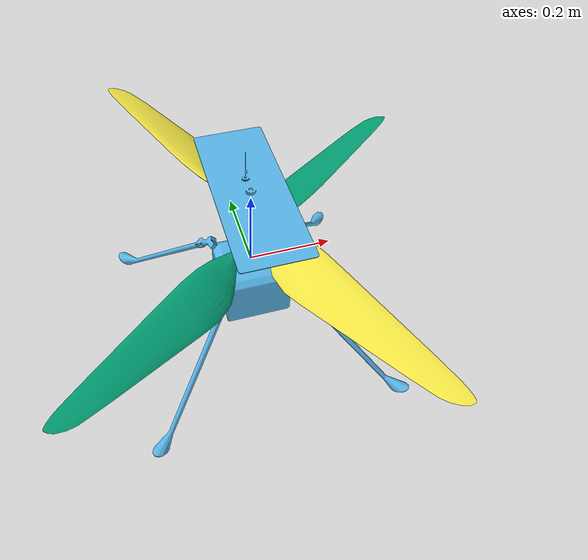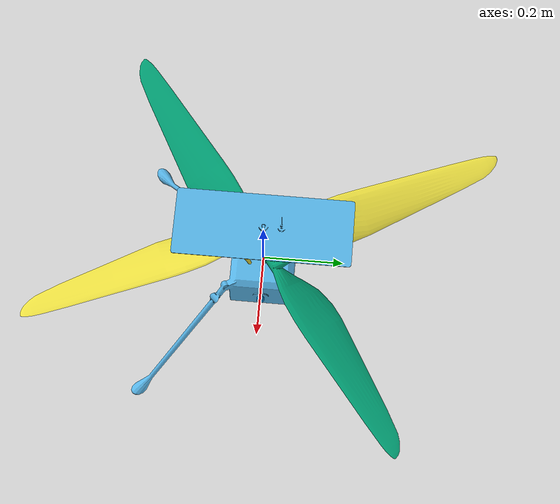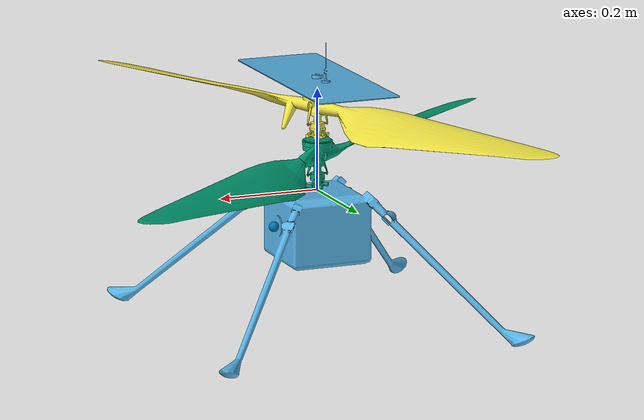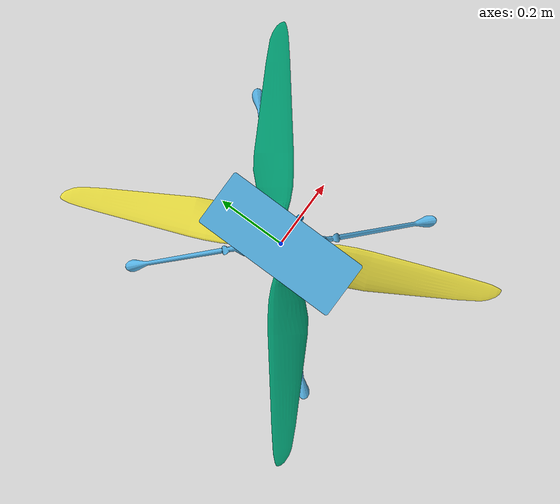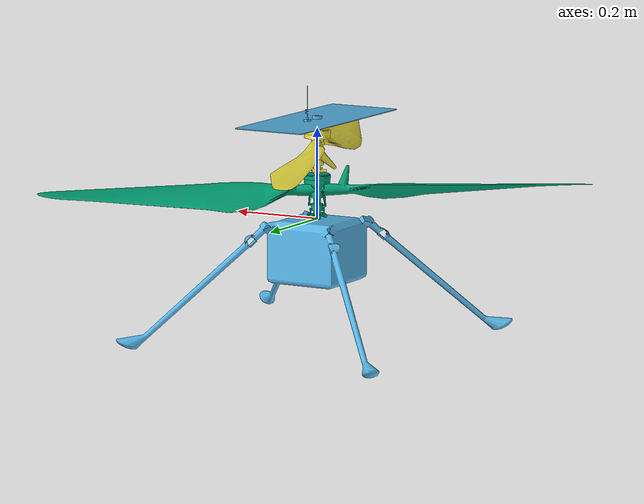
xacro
<?xml version='1.0'?>

<robot name="ingenuity" xmlns:xacro="http://www.ros.org/wiki/xacro">

    <!-- PROPERTIES -->

	<xacro:property name="M_PI" value="3.1415926535897931"/>

    <xacro:arg name="sensor_update_rate" default="25.0"/>
    <xacro:arg name="controller_update_rate" default="50.0"/>
    <xacro:property name="sensor_update_rate" value="$(arg sensor_update_rate)"/>
    <xacro:property name="controller_update_rate" value="$(arg controller_update_rate)"/>

    <!-- PLUGINS -->
    <gazebo>
        <plugin name="gazebo_ros_state" filename="libgazebo_ros_state.so">
            <pubInterval>0.025</pubInterval> <!-- But uses way more bandwidth due to TF! -->
            <linkName>link_base</linkName>
        </plugin>
    </gazebo>

	<!-- Cameras -->
	<gazebo reference="link_ingenuity_camera_front">
		<sensor type="camera" name="camera_front">
			<update_rate>${sensor_update_rate}</update_rate>
			<camera>
				<horizontal_fov>${90*M_PI/180.0}</horizontal_fov>
				<image>
					<format>R8G8B8</format>
					<width>640</width>
					<height>480</height>
				</image>
				<clip>
					<near>0.01</near>
					<far>100</far>
				</clip>
			</camera>

			<plugin name="camera_camera_controller" filename="libgazebo_ros_camera.so">
				<alwaysOn>true</alwaysOn>
				<updateRate>${sensor_update_rate}</updateRate>
				<cameraName>camera_front</cameraName>
				<imageTopicName>image_raw</imageTopicName>
				<cameraInfoTopicName>camera_info</cameraInfoTopicName>
				<frameName>link_ingenuity_camera_optical_front</frameName>
				<hackBaseline>0.07</hackBaseline>
				<distortionK1>0.0</distortionK1>
				<distortionK2>0.0</distortionK2>
				<distortionK3>0.0</distortionK3>
				<distortionT1>0.0</distortionT1>
				<distortionT2>0.0</distortionT2>
			</plugin>
		</sensor>
    </gazebo>

	<gazebo reference="link_ingenuity_camera_down">
		<sensor type="camera" name="camera_down">
			<update_rate>${sensor_update_rate}</update_rate>
			<camera>
				<horizontal_fov>${90 * M_PI/180.0}</horizontal_fov>
				<image>
					<format>R8G8B8</format>
					<width>640</width>
					<height>480</height>
				</image>
				<clip>
					<near>0.01</near>
					<far>100</far>
				</clip>
			</camera>

			<plugin name="camera_camera_controller" filename="libgazebo_ros_camera.so">
				<alwaysOn>true</alwaysOn>
				<updateRate>${sensor_update_rate}</updateRate>
				<cameraName>camera_down</cameraName>
				<imageTopicName>image_raw</imageTopicName>
				<cameraInfoTopicName>camera_info</cameraInfoTopicName>
				<frameName>link_ingenuity_camera_optical_down</frameName>
				<hackBaseline>0.07</hackBaseline>
				<distortionK1>0.0</distortionK1>
				<distortionK2>0.0</distortionK2>
				<distortionK3>0.0</distortionK3>
				<distortionT1>0.0</distortionT1>
				<distortionT2>0.0</distortionT2>
			</plugin>
		</sensor>
    </gazebo>

	<!-- Gazebo sensor plugins -->
	<gazebo>
		<plugin name="gazebo_ros_control" filename="libgazebo_ros_control.so">
		</plugin>

		<plugin name="quadrotor_imu_sim" filename="libhector_gazebo_ros_imu.so">
		    <alwaysOn>true</alwaysOn>
		    <updateRate>${sensor_update_rate}</updateRate>
		    <bodyName>ingenuity::link_base</bodyName>
		    <frameId>link_base</frameId>
		    <topicName>imu</topicName>
		    <gaussianNoise>0.05</gaussianNoise>
		    <accelDrift>0.001 0.001 0.001</accelDrift>
		</plugin>

		<plugin name="quadrotor_groundtruth_sim" filename="libgazebo_ros_p3d.so">
		    <!-- Takes a BODY NAME body::link and publishes an ODOM-Topic only, parent frame is world -->
		    <!-- COMBINE WITH static_transform_publisher AND ground_truth_to_tf IN THE GAZEBO_SPAWN.launch FILE-->
			<alwaysOn>true</alwaysOn>
			<updateRate>${sensor_update_rate}</updateRate>
			<bodyName>ingenuity::link_base</bodyName>
			<topicName>odom</topicName>
			<gaussianNoise>0.0</gaussianNoise>
			<frameName>world</frameName> <!-- REQUIRES world HERE! -->
		</plugin>
	</gazebo>

	<gazebo>
        <plugin name="quadrotor_simple_controller" filename="libhector_gazebo_quadrotor_simple_controller.so">
            <bodyName>ingenuity::link_base</bodyName>
            <odomTopic>odom</odomTopic>
            <imuTopic>imu</imuTopic>
            <cmdvelTopic>cmd_vel</cmdvelTopic>
            <landingtakeoffSpeed>0.125</landingtakeoffSpeed>
            <landingtakeoffHeight>0.5</landingtakeoffHeight>
            <maxForce>20.0</maxForce>

            <rollpitchProportionalGain>2.0</rollpitchProportionalGain>
            <rollpitchDifferentialGain>10.0</rollpitchDifferentialGain>
            <rollpitchIntegralGain>0.0</rollpitchIntegralGain>
            <yawProportionalGain>1.0</yawProportionalGain>
            <yawDifferentialGain>0.0</yawDifferentialGain>
            <yawIntegralGain>0.0</yawIntegralGain>
            <velocityXYProportionalGain>1.0</velocityXYProportionalGain>
            <velocityXYDifferentialGain>0.5</velocityXYDifferentialGain>
            <velocityXYIntegralGain>0.0</velocityXYIntegralGain>
            <velocityZProportionalGain>5.0</velocityZProportionalGain>
            <velocityZDifferentialGain>1.0</velocityZDifferentialGain>
            <velocityZIntegralGain>0.0</velocityZIntegralGain>

            <rollpitchLimit>1.0</rollpitchLimit>
            <yawLimit>3.1415</yawLimit>
            <velocityXYLimit>1.0</velocityXYLimit>
            <velocityZLimit>1.0</velocityZLimit>
        </plugin>
    </gazebo>

    <!-- LINKS -->

	<link name="link_base"></link>

	<link name="link_ingenuity_body">
        <inertial>
            <origin xyz="0.0 0.0 0.0" rpy="0.0 0.0 0.0"/>
            <mass value="1.7"/>
            <inertia ixx="0.044271" ixy="0" ixz="0" iyx="0.0" iyy="0.044271" iyz="0" izx="0.0" izy="0.0" izz="0.017708"/>
        </inertial>
        <collision name="link_ingenuity_body_collision">
            <origin xyz="0.0 0.0 0.0" rpy="0.0 0.0 0.0"/>
            <geometry>
                <box size="0.25 0.25 0.5"/>
            </geometry>
        </collision>
        <visual name="link_ingenuity_body_visual">
            <origin xyz="0.0 0.0 0.0" rpy="0.0 0.0 0.0"/>
            <geometry>
                <mesh filename="package://wai_ingenuity_gazebo/resources/link_ingenuity_body.dae"/>
            </geometry>
        </visual>
        <visual name="link_ingenuity_solar_panel_visual">
            <origin xyz="0.0 0.0 0.2" rpy="0.0 0.0 0.0"/>
            <geometry>
                <mesh filename="package://wai_ingenuity_gazebo/resources/link_ingenuity_solar_panel.dae"/>
            </geometry>
		</visual>
	</link>

	<link name="link_ingenuity_rotor_middle">
        <inertial>
            <origin xyz="0.0 0.0 0.0" rpy="0.0 0.0 0.0"/>
            <mass value="0.056" />
            <inertia ixx="0.020172" ixy="0.0" ixz="0.0" iyx="0.0" iyy="0.020172" iyz="0.0" izx="0.0" izy="0.0" izz="0.04032"/>
        </inertial>
        <visual name="link_ingenuity_rotor_middle_visual">
            <origin xyz="0.0 0.0 0.0" rpy="0.0 0.0 0.0"/>
            <geometry>
                <mesh filename="package://wai_ingenuity_gazebo/resources/link_ingenuity_rotor_middle.dae"/>
            </geometry>
        </visual>
	</link>

	<link name="link_ingenuity_rotor_top">
        <inertial>
            <origin xyz="0.0 0.0 0.0" rpy="0.0 0.0 0.0"/>
            <mass value="0.056" />
            <inertia ixx="0.020172" ixy="0.0" ixz="0.0" iyx="0.0" iyy="0.020172" iyz="0.0" izx="0.0" izy="0.0" izz="0.04032"/>
        </inertial>
		<visual name="link_ingenuity_rotor_top_visual">
		  <origin xyz="0.0 0.0 0.0" rpy="0.0 0.0 0.0"/>
		  <geometry>
			<mesh filename="package://wai_ingenuity_gazebo/resources/link_ingenuity_rotor_top.dae"/>
		  </geometry>
		</visual>
	</link>

	<link name="link_ingenuity_camera_front">
		<visual>
            <origin xyz="0.0 0.0 0.0" rpy="0.0 0.0 0.0"/>
            <geometry>
                <sphere radius="0.01"/>
            </geometry>
		</visual>
        <inertial>
            <origin xyz="0.0 0.0 0.0" rpy="0.0 0.0 0.0"/>
            <mass value="0.001"/>
            <inertia  ixx="0.00000004" ixy="0.0"  ixz="0.0"  iyy="0.00000004"  iyz="0.0"  izz="0.00000004"/>
        </inertial>
	</link>
	<link name="link_ingenuity_camera_optical_front"></link>

	<link name="link_ingenuity_camera_down">
		<visual>
		  <origin xyz="0.0 0.0 0.0" rpy="0.0 0.0 0.0"/>
		  <geometry>
			<sphere radius="0.01"/>
		  </geometry>
		</visual>
        <inertial>
            <origin xyz="0.0 0.0 0.0" rpy="0.0 0.0 0.0"/>
            <mass value="0.001"/>
            <inertia  ixx="0.00000004" ixy="0.0"  ixz="0.0"  iyy="0.00000004"  iyz="0.0"  izz="0.00000004"/>
        </inertial>
	</link>
	<link name="link_ingenuity_camera_optical_down"></link>

    <!-- JOINTS -->

	<joint name="joint_ingenuity_body" type="fixed">
		<axis xyz="0 0 0" />
		<origin xyz="0.0 0.0 0.0" rpy="0.0 0.0 0.0"/>
		<parent link="link_base"/>
		<child link="link_ingenuity_body"/>
	</joint>

	<joint name="joint_ingenuity_rotor_middle" type="continuous"> <!-- CONTINUOUS -->
		<axis xyz="0 0 1" />
		<origin xyz="0.0 0.0 0.0" rpy="0.0 0.0 0.0"/>
		<parent link="link_ingenuity_body"/>
		<child link="link_ingenuity_rotor_middle"/>
		<limit effort="100" velocity="100"/>
		<dynamics damping="0.0" friction="0.0"/>
	</joint>

	<joint name="joint_ingenuity_rotor_top" type="continuous"> <!-- CONTINUOUS -->
		<axis xyz="0 0 1" />
		<origin xyz="0.0 0.0 0.1" rpy="0.0 0.0 0.0"/>
		<parent link="link_ingenuity_body"/>
		<child link="link_ingenuity_rotor_top"/>
		<limit effort="100" velocity="100"/>
		<dynamics damping="0.0" friction="0.0"/>
	</joint>

	<joint name="joint_ingenuity_camera_front" type="fixed">
		<axis xyz="0 0 0" />
		<origin xyz="0.09 0.0 -0.065" rpy="0.0 0.3 0.0"/>
		<parent link="link_ingenuity_body"/>
		<child link="link_ingenuity_camera_front"/>
	</joint>
	<joint name="joint_ingenuity_camera_optical_front" type="fixed">
		<!-- these values have to be these values otherwise the gazebo camera
			image won't be aligned properly with the frame it is supposedly
			originating from -->
		<origin xyz="0 0 0" rpy="-1.570796327 0 -1.570796327"/>
		<parent link="link_ingenuity_camera_front"/>
		<child link="link_ingenuity_camera_optical_front"/>
	</joint>

	<joint name="joint_ingenuity_camera_down" type="fixed">
		<axis xyz="0 0 0" />
		<origin xyz="0.05 0.0 -0.13" rpy="0.0 1.570796327 0.0"/>
		<parent link="link_ingenuity_body"/>
		<child link="link_ingenuity_camera_down"/>
	</joint>
	<joint name="joint_ingenuity_camera_optical_down" type="fixed">
		<!-- these values have to be these values otherwise the gazebo camera
			image won't be aligned properly with the frame it is supposedly
			originating from -->
		<origin xyz="0 0 0" rpy="-1.570796327 0 -1.570796327"/>
		<parent link="link_ingenuity_camera_down"/>
		<child link="link_ingenuity_camera_optical_down"/>
	</joint>

    <!-- TRANSMISSIONS -->

	<transmission name="joint_ingenuity_rotor_middle_transmission">
		<type>transmission_interface/SimpleTransmission</type>
		<joint name="joint_ingenuity_rotor_middle">
		  <hardwareInterface>hardware_interface/EffortJointInterface</hardwareInterface>
		</joint>
		<actuator name="joint_ingenuity_rotor_middle_actuator">
		  <hardwareInterface>hardware_interface/EffortJointInterface</hardwareInterface>
		  <mechanicalReduction>1</mechanicalReduction>
		</actuator>
	</transmission>

	<transmission name="joint_ingenuity_rotor_top_transmission">
		<type>transmission_interface/SimpleTransmission</type>
		<joint name="joint_ingenuity_rotor_top">
		  <hardwareInterface>hardware_interface/EffortJointInterface</hardwareInterface>
		</joint>
		<actuator name="joint_ingenuity_rotor_top_actuator">
		  <hardwareInterface>hardware_interface/EffortJointInterface</hardwareInterface>
		  <mechanicalReduction>1</mechanicalReduction>
		</actuator>
	</transmission>

</robot>
